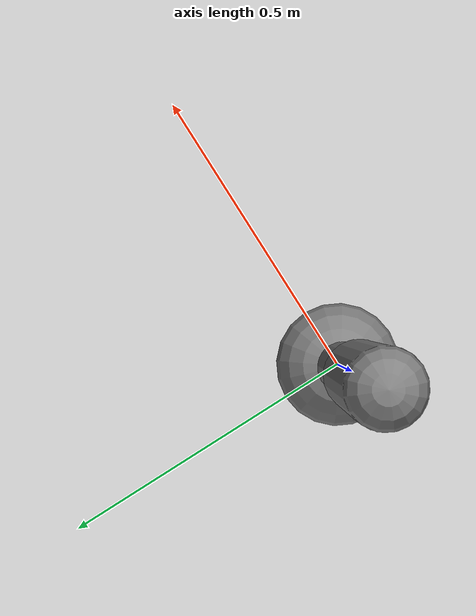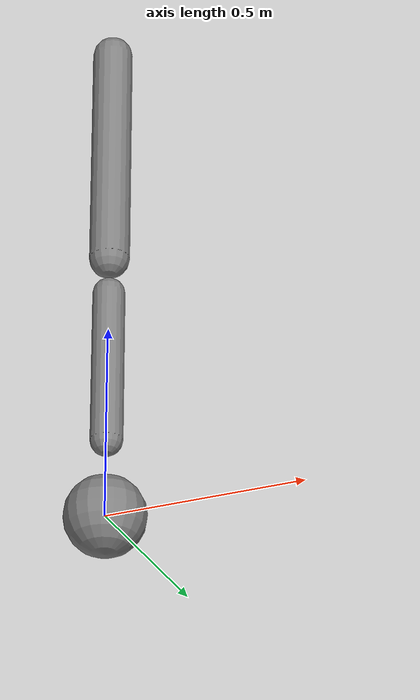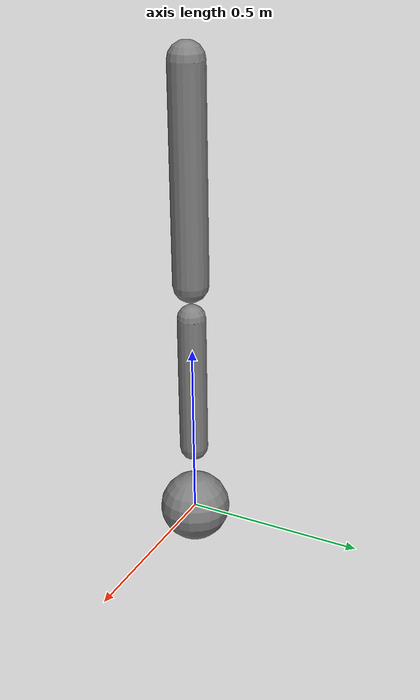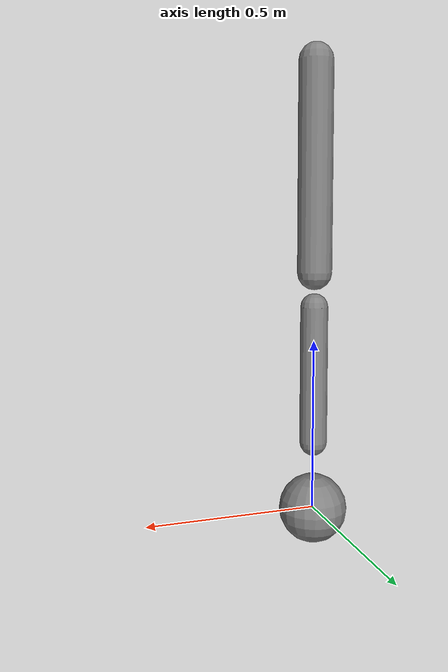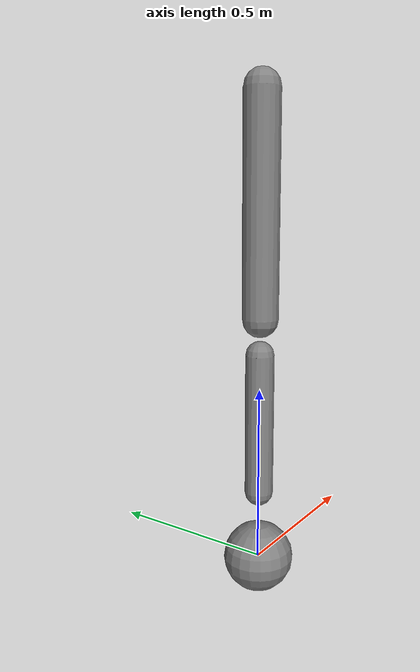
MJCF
<mujoco>
      <option gravity="0 0 -9.81"/>
      <worldbody>
        <body pos="0 0 1">
          <freejoint/>
          <geom type="capsule" size="0.05 0.3" mass="1.0"/>
          <body pos="0 0 -0.6">
            <joint type="hinge" axis="0 1 0"/>
            <geom type="capsule" size="0.04 0.2" mass="0.5"/>
            <body pos="0 0 -0.4">
              <joint type="ball"/>
              <geom type="sphere" size="0.1" mass="0.3"/>
            </body>
          </body>
        </body>
      </worldbody>
    </mujoco>
